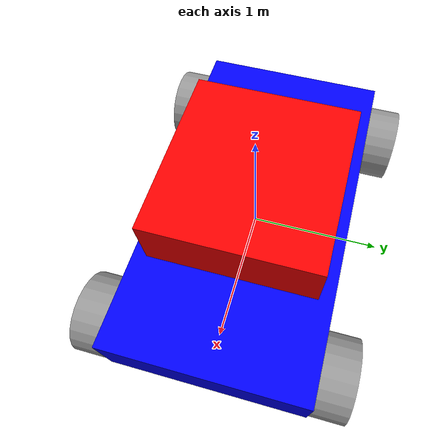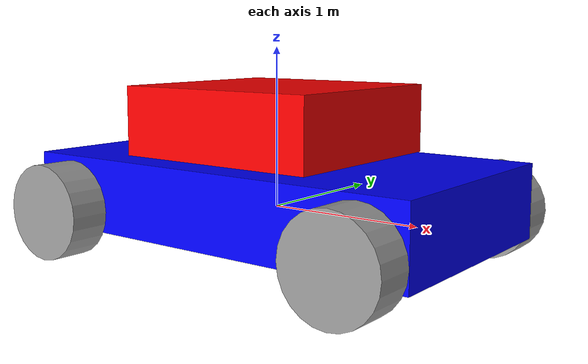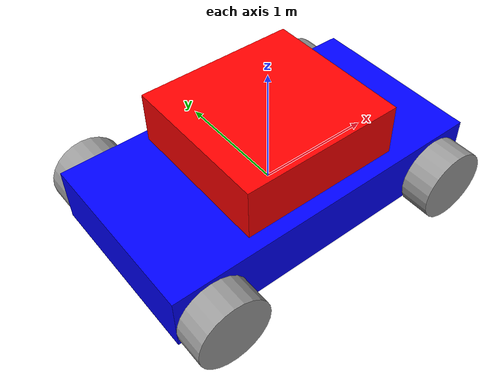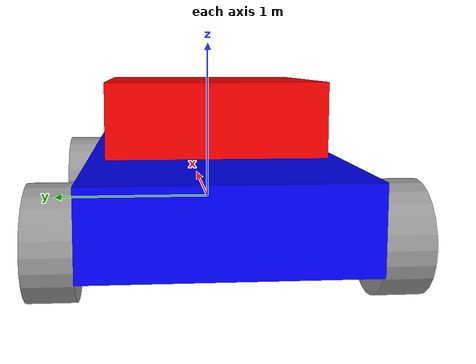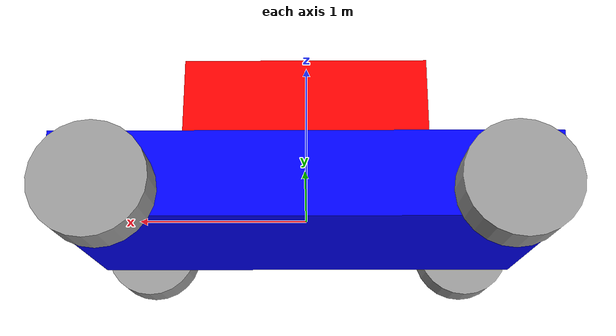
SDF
<?xml version='1.0'?>
<sdf version='1.6'>
  <model name='4_wheelRobot'>
    <link name='link_0'>
      <pose frame=''>-0 0 0.08 0 -0 0</pose>
      <inertial>
        <mass>1.88568</mass>
        <inertia>
          <ixx>0.379444</ixx>
          <ixy>0</ixy>
          <ixz>0</ixz>
          <iyy>1.2096</iyy>
          <iyz>0</iyz>
          <izz>1.5211</izz>
        </inertia>
        <pose frame=''>0 0 0 0 -0 0</pose>
      </inertial>
      <self_collide>0</self_collide>
      <kinematic>0</kinematic>
      <visual name='visual'>
        <pose frame=''>0 0 0 0 -0 0</pose>
        <geometry>
          <box>
            <size>2.73521 1.48274 0.464962</size>
          </box>
        </geometry>
        <material>
          <lighting>1</lighting>
          <script>
            <uri>file://media/materials/scripts/gazebo.material</uri>
            <name>Gazebo/Grey</name>
          </script>
          <ambient>0.3 0.3 0.3 1</ambient>
          <diffuse>0 0 1 1</diffuse>
          <specular>1 0.91 0.3 1</specular>
          <emissive>0 0 0 1</emissive>
          <shader type='vertex'>
            <normal_map>__default__</normal_map>
          </shader>
        </material>
        <cast_shadows>1</cast_shadows>
        <transparency>0</transparency>
      </visual>
      <collision name='collision'>
        <laser_retro>0</laser_retro>
        <max_contacts>10</max_contacts>
        <pose frame=''>0 0 0 0 -0 0</pose>
        <geometry>
          <box>
            <size>2.73521 1.48274 0.464962</size>
          </box>
        </geometry>
        <surface>
          <friction>
            <ode>
              <mu>1</mu>
              <mu2>1</mu2>
              <fdir1>0 0 0</fdir1>
              <slip1>0</slip1>
              <slip2>0</slip2>
            </ode>
            <torsional>
              <coefficient>1</coefficient>
              <patch_radius>0</patch_radius>
              <surface_radius>0</surface_radius>
              <use_patch_radius>1</use_patch_radius>
              <ode>
                <slip>0</slip>
              </ode>
            </torsional>
          </friction>
          <bounce>
            <restitution_coefficient>0</restitution_coefficient>
            <threshold>1e+06</threshold>
          </bounce>
          <contact>
            <collide_without_contact>0</collide_without_contact>
            <collide_without_contact_bitmask>1</collide_without_contact_bitmask>
            <collide_bitmask>1</collide_bitmask>
            <ode>
              <soft_cfm>0</soft_cfm>
              <soft_erp>0.2</soft_erp>
              <kp>1e+13</kp>
              <kd>1</kd>
              <max_vel>0.01</max_vel>
              <min_depth>0</min_depth>
            </ode>
            <bullet>
              <split_impulse>1</split_impulse>
              <split_impulse_penetration_threshold>-0.01</split_impulse_penetration_threshold>
              <soft_cfm>0</soft_cfm>
              <soft_erp>0.2</soft_erp>
              <kp>1e+13</kp>
              <kd>1</kd>
            </bullet>
          </contact>
        </surface>
      </collision>
    </link>
    <link name='link_0_0'>
      <pose frame=''>-0 -0 0.55037 0 -0 2.8e-05</pose>
      <inertial>
        <mass>0.727039</mass>
        <inertia>
          <ixx>0.107272</ixx>
          <ixy>0</ixy>
          <ixz>0</ixz>
          <iyy>0.119979</iyy>
          <iyz>0</iyz>
          <izz>0.204726</izz>
        </inertia>
        <pose frame=''>0 0 0 0 -0 0</pose>
      </inertial>
      <self_collide>0</self_collide>
      <kinematic>0</kinematic>
      <visual name='visual'>
        <pose frame=''>0 0 0 0 -0 0</pose>
        <geometry>
          <box>
            <size>1.33955 1.25883 0.431187</size>
          </box>
        </geometry>
        <material>
          <lighting>1</lighting>
          <script>
            <uri>file://media/materials/scripts/gazebo.material</uri>
            <name>Gazebo/Grey</name>
          </script>
          <ambient>0.3 0.3 0.3 1</ambient>
          <diffuse>1 0 0 1</diffuse>
          <specular>0.01 0.01 0.01 1</specular>
          <emissive>0 0 0 1</emissive>
          <shader type='vertex'>
            <normal_map>__default__</normal_map>
          </shader>
        </material>
        <cast_shadows>1</cast_shadows>
        <transparency>0</transparency>
      </visual>
      <collision name='collision'>
        <laser_retro>0</laser_retro>
        <max_contacts>10</max_contacts>
        <pose frame=''>0 0 0 0 -0 0</pose>
        <geometry>
          <box>
            <size>1.33955 1.25883 0.431187</size>
          </box>
        </geometry>
        <surface>
          <friction>
            <ode>
              <mu>1</mu>
              <mu2>1</mu2>
              <fdir1>0 0 0</fdir1>
              <slip1>0</slip1>
              <slip2>0</slip2>
            </ode>
            <torsional>
              <coefficient>1</coefficient>
              <patch_radius>0</patch_radius>
              <surface_radius>0</surface_radius>
              <use_patch_radius>1</use_patch_radius>
              <ode>
                <slip>0</slip>
              </ode>
            </torsional>
          </friction>
          <bounce>
            <restitution_coefficient>0</restitution_coefficient>
            <threshold>1e+06</threshold>
          </bounce>
          <contact>
            <collide_without_contact>0</collide_without_contact>
            <collide_without_contact_bitmask>1</collide_without_contact_bitmask>
            <collide_bitmask>1</collide_bitmask>
            <ode>
              <soft_cfm>0</soft_cfm>
              <soft_erp>0.2</soft_erp>
              <kp>1e+13</kp>
              <kd>1</kd>
              <max_vel>0.01</max_vel>
              <min_depth>0</min_depth>
            </ode>
            <bullet>
              <split_impulse>1</split_impulse>
              <split_impulse_penetration_threshold>-0.01</split_impulse_penetration_threshold>
              <soft_cfm>0</soft_cfm>
              <soft_erp>0.2</soft_erp>
              <kp>1e+13</kp>
              <kd>1</kd>
            </bullet>
          </contact>
        </surface>
      </collision>
    </link>
    <link name='link_1'>
      <pose frame=''>1.06761 -0.866609 -0.02 1.57 -0 0</pose>
      <inertial>
        <mass>1</mass>
        <inertia>
          <ixx>0.145833</ixx>
          <ixy>0</ixy>
          <ixz>0</ixz>
          <iyy>0.145833</iyy>
          <iyz>0</iyz>
          <izz>0.125</izz>
        </inertia>
        <pose frame=''>0 0 0 0 -0 0</pose>
      </inertial>
      <self_collide>0</self_collide>
      <kinematic>0</kinematic>
      <visual name='visual'>
        <pose frame=''>0 0 0 0 -0 0</pose>
        <geometry>
          <cylinder>
            <radius>0.3</radius>
            <length>0.25</length>
          </cylinder>
        </geometry>
        <material>
          <lighting>1</lighting>
          <script>
            <uri>file://media/materials/scripts/gazebo.material</uri>
            <name>Gazebo/Grey</name>
          </script>
          <ambient>0.3 0.3 0.3 1</ambient>
          <diffuse>0 0 0 1</diffuse>
          <specular>0.01 0.01 0.01 1</specular>
          <emissive>0 0 0 1</emissive>
          <shader type='vertex'>
            <normal_map>__default__</normal_map>
          </shader>
        </material>
        <cast_shadows>1</cast_shadows>
        <transparency>0</transparency>
      </visual>
      <collision name='collision'>
        <laser_retro>0</laser_retro>
        <max_contacts>10</max_contacts>
        <pose frame=''>0 0 0 0 -0 0</pose>
        <geometry>
          <cylinder>
            <radius>0.3</radius>
            <length>0.25</length>
          </cylinder>
        </geometry>
        <surface>
          <friction>
            <ode>
              <mu>1</mu>
              <mu2>1</mu2>
              <fdir1>0 0 0</fdir1>
              <slip1>0</slip1>
              <slip2>0</slip2>
            </ode>
            <torsional>
              <coefficient>1</coefficient>
              <patch_radius>0</patch_radius>
              <surface_radius>0</surface_radius>
              <use_patch_radius>1</use_patch_radius>
              <ode>
                <slip>0</slip>
              </ode>
            </torsional>
          </friction>
          <bounce>
            <restitution_coefficient>0</restitution_coefficient>
            <threshold>1e+06</threshold>
          </bounce>
          <contact>
            <collide_without_contact>0</collide_without_contact>
            <collide_without_contact_bitmask>1</collide_without_contact_bitmask>
            <collide_bitmask>1</collide_bitmask>
            <ode>
              <soft_cfm>0</soft_cfm>
              <soft_erp>0.2</soft_erp>
              <kp>1e+13</kp>
              <kd>1</kd>
              <max_vel>0.01</max_vel>
              <min_depth>0</min_depth>
            </ode>
            <bullet>
              <split_impulse>1</split_impulse>
              <split_impulse_penetration_threshold>-0.01</split_impulse_penetration_threshold>
              <soft_cfm>0</soft_cfm>
              <soft_erp>0.2</soft_erp>
              <kp>1e+13</kp>
              <kd>1</kd>
            </bullet>
          </contact>
        </surface>
      </collision>
    </link>
    <link name='link_1_clone'>
      <pose frame=''>1.06761 0.866609 -0.02 1.57 -0 0</pose>
      <inertial>
        <mass>1</mass>
        <inertia>
          <ixx>0.145833</ixx>
          <ixy>0</ixy>
          <ixz>0</ixz>
          <iyy>0.145833</iyy>
          <iyz>0</iyz>
          <izz>0.125</izz>
        </inertia>
        <pose frame=''>0 0 0 0 -0 0</pose>
      </inertial>
      <self_collide>0</self_collide>
      <kinematic>0</kinematic>
      <visual name='visual'>
        <pose frame=''>0 0 0 0 -0 0</pose>
        <geometry>
          <cylinder>
            <radius>0.3</radius>
            <length>0.25</length>
          </cylinder>
        </geometry>
        <material>
          <lighting>1</lighting>
          <script>
            <uri>file://media/materials/scripts/gazebo.material</uri>
            <name>Gazebo/Grey</name>
          </script>
          <ambient>0.3 0.3 0.3 1</ambient>
          <diffuse>0 0 0 1</diffuse>
          <specular>0.01 0.01 0.01 1</specular>
          <emissive>0 0 0 1</emissive>
          <shader type='vertex'>
            <normal_map>__default__</normal_map>
          </shader>
        </material>
        <cast_shadows>1</cast_shadows>
        <transparency>0</transparency>
      </visual>
      <collision name='collision'>
        <laser_retro>0</laser_retro>
        <max_contacts>10</max_contacts>
        <pose frame=''>0 0 0 0 -0 0</pose>
        <geometry>
          <cylinder>
            <radius>0.3</radius>
            <length>0.25</length>
          </cylinder>
        </geometry>
        <surface>
          <friction>
            <ode>
              <mu>1</mu>
              <mu2>1</mu2>
              <fdir1>0 0 0</fdir1>
              <slip1>0</slip1>
              <slip2>0</slip2>
            </ode>
            <torsional>
              <coefficient>1</coefficient>
              <patch_radius>0</patch_radius>
              <surface_radius>0</surface_radius>
              <use_patch_radius>1</use_patch_radius>
              <ode>
                <slip>0</slip>
              </ode>
            </torsional>
          </friction>
          <bounce>
            <restitution_coefficient>0</restitution_coefficient>
            <threshold>1e+06</threshold>
          </bounce>
          <contact>
            <collide_without_contact>0</collide_without_contact>
            <collide_without_contact_bitmask>1</collide_without_contact_bitmask>
            <collide_bitmask>1</collide_bitmask>
            <ode>
              <soft_cfm>0</soft_cfm>
              <soft_erp>0.2</soft_erp>
              <kp>1e+13</kp>
              <kd>1</kd>
              <max_vel>0.01</max_vel>
              <min_depth>0</min_depth>
            </ode>
            <bullet>
              <split_impulse>1</split_impulse>
              <split_impulse_penetration_threshold>-0.01</split_impulse_penetration_threshold>
              <soft_cfm>0</soft_cfm>
              <soft_erp>0.2</soft_erp>
              <kp>1e+13</kp>
              <kd>1</kd>
            </bullet>
          </contact>
        </surface>
      </collision>
    </link>
    <link name='link_1_clone_0'>
      <pose frame=''>-1.06761 -0.866609 -0.02 1.57 -0 0</pose>
      <inertial>
        <mass>1</mass>
        <inertia>
          <ixx>0.145833</ixx>
          <ixy>0</ixy>
          <ixz>0</ixz>
          <iyy>0.145833</iyy>
          <iyz>0</iyz>
          <izz>0.125</izz>
        </inertia>
        <pose frame=''>0 0 0 0 -0 0</pose>
      </inertial>
      <self_collide>0</self_collide>
      <kinematic>0</kinematic>
      <visual name='visual'>
        <pose frame=''>0 0 0 0 -0 0</pose>
        <geometry>
          <cylinder>
            <radius>0.3</radius>
            <length>0.25</length>
          </cylinder>
        </geometry>
        <material>
          <lighting>1</lighting>
          <script>
            <uri>file://media/materials/scripts/gazebo.material</uri>
            <name>Gazebo/Grey</name>
          </script>
          <ambient>0.3 0.3 0.3 1</ambient>
          <diffuse>0 0 0 1</diffuse>
          <specular>0.01 0.01 0.01 1</specular>
          <emissive>0 0 0 1</emissive>
          <shader type='vertex'>
            <normal_map>__default__</normal_map>
          </shader>
        </material>
        <cast_shadows>1</cast_shadows>
        <transparency>0</transparency>
      </visual>
      <collision name='collision'>
        <laser_retro>0</laser_retro>
        <max_contacts>10</max_contacts>
        <pose frame=''>0 0 0 0 -0 0</pose>
        <geometry>
          <cylinder>
            <radius>0.3</radius>
            <length>0.25</length>
          </cylinder>
        </geometry>
        <surface>
          <friction>
            <ode>
              <mu>1</mu>
              <mu2>1</mu2>
              <fdir1>0 0 0</fdir1>
              <slip1>0</slip1>
              <slip2>0</slip2>
            </ode>
            <torsional>
              <coefficient>1</coefficient>
              <patch_radius>0</patch_radius>
              <surface_radius>0</surface_radius>
              <use_patch_radius>1</use_patch_radius>
              <ode>
                <slip>0</slip>
              </ode>
            </torsional>
          </friction>
          <bounce>
            <restitution_coefficient>0</restitution_coefficient>
            <threshold>1e+06</threshold>
          </bounce>
          <contact>
            <collide_without_contact>0</collide_without_contact>
            <collide_without_contact_bitmask>1</collide_without_contact_bitmask>
            <collide_bitmask>1</collide_bitmask>
            <ode>
              <soft_cfm>0</soft_cfm>
              <soft_erp>0.2</soft_erp>
              <kp>1e+13</kp>
              <kd>1</kd>
              <max_vel>0.01</max_vel>
              <min_depth>0</min_depth>
            </ode>
            <bullet>
              <split_impulse>1</split_impulse>
              <split_impulse_penetration_threshold>-0.01</split_impulse_penetration_threshold>
              <soft_cfm>0</soft_cfm>
              <soft_erp>0.2</soft_erp>
              <kp>1e+13</kp>
              <kd>1</kd>
            </bullet>
          </contact>
        </surface>
      </collision>
    </link>
    <link name='link_1_clone_1'>
      <pose frame=''>-1.06761 0.866609 -0.02 1.57 -0 0</pose>
      <inertial>
        <mass>1</mass>
        <inertia>
          <ixx>0.145833</ixx>
          <ixy>0</ixy>
          <ixz>0</ixz>
          <iyy>0.145833</iyy>
          <iyz>0</iyz>
          <izz>0.125</izz>
        </inertia>
        <pose frame=''>0 0 0 0 -0 0</pose>
      </inertial>
      <self_collide>0</self_collide>
      <kinematic>0</kinematic>
      <visual name='visual'>
        <pose frame=''>0 0 0 0 -0 0</pose>
        <geometry>
          <cylinder>
            <radius>0.3</radius>
            <length>0.25</length>
          </cylinder>
        </geometry>
        <material>
          <lighting>1</lighting>
          <script>
            <uri>file://media/materials/scripts/gazebo.material</uri>
            <name>Gazebo/Grey</name>
          </script>
          <ambient>0.3 0.3 0.3 1</ambient>
          <diffuse>0 0 0 1</diffuse>
          <specular>0.01 0.01 0.01 1</specular>
          <emissive>0 0 0 1</emissive>
          <shader type='vertex'>
            <normal_map>__default__</normal_map>
          </shader>
        </material>
        <cast_shadows>1</cast_shadows>
        <transparency>0</transparency>
      </visual>
      <collision name='collision'>
        <laser_retro>0</laser_retro>
        <max_contacts>10</max_contacts>
        <pose frame=''>0 0 0 0 -0 0</pose>
        <geometry>
          <cylinder>
            <radius>0.3</radius>
            <length>0.25</length>
          </cylinder>
        </geometry>
        <surface>
          <friction>
            <ode>
              <mu>1</mu>
              <mu2>1</mu2>
              <fdir1>0 0 0</fdir1>
              <slip1>0</slip1>
              <slip2>0</slip2>
            </ode>
            <torsional>
              <coefficient>1</coefficient>
              <patch_radius>0</patch_radius>
              <surface_radius>0</surface_radius>
              <use_patch_radius>1</use_patch_radius>
              <ode>
                <slip>0</slip>
              </ode>
            </torsional>
          </friction>
          <bounce>
            <restitution_coefficient>0</restitution_coefficient>
            <threshold>1e+06</threshold>
          </bounce>
          <contact>
            <collide_without_contact>0</collide_without_contact>
            <collide_without_contact_bitmask>1</collide_without_contact_bitmask>
            <collide_bitmask>1</collide_bitmask>
            <ode>
              <soft_cfm>0</soft_cfm>
              <soft_erp>0.2</soft_erp>
              <kp>1e+13</kp>
              <kd>1</kd>
              <max_vel>0.01</max_vel>
              <min_depth>0</min_depth>
            </ode>
            <bullet>
              <split_impulse>1</split_impulse>
              <split_impulse_penetration_threshold>-0.01</split_impulse_penetration_threshold>
              <soft_cfm>0</soft_cfm>
              <soft_erp>0.2</soft_erp>
              <kp>1e+13</kp>
              <kd>1</kd>
            </bullet>
          </contact>
        </surface>
      </collision>
    </link>
    <joint name='link_0_JOINT_0_0' type='revolute'>
      <parent>link_0</parent>
      <child>link_0_0</child>
      <pose frame=''>0 0 0 0 -0 0</pose>
      <axis>
        <xyz>1 0 0</xyz>
        <use_parent_model_frame>0</use_parent_model_frame>
        <limit>
          <lower>-1.79769e+308</lower>
          <upper>1.79769e+308</upper>
          <effort>-1</effort>
          <velocity>-1</velocity>
        </limit>
        <dynamics>
          <spring_reference>0</spring_reference>
          <spring_stiffness>0</spring_stiffness>
          <damping>0</damping>
          <friction>0</friction>
        </dynamics>
      </axis>
      <physics>
        <ode>
          <limit>
            <cfm>0</cfm>
            <erp>0.2</erp>
          </limit>
          <suspension>
            <cfm>0</cfm>
            <erp>0.2</erp>
          </suspension>
        </ode>
      </physics>
    </joint>
    <joint name='link_0_JOINT_0' type='revolute'>
      <parent>link_0</parent>
      <child>link_1</child>
      <pose frame=''>0 0 0 0 -0 0</pose>
      <axis>
        <xyz>0 0 1</xyz>
        <use_parent_model_frame>0</use_parent_model_frame>
        <limit>
          <lower>-1.79769e+308</lower>
          <upper>1.79769e+308</upper>
          <effort>-1</effort>
          <velocity>-1</velocity>
        </limit>
        <dynamics>
          <spring_reference>0</spring_reference>
          <spring_stiffness>0</spring_stiffness>
          <damping>0</damping>
          <friction>0</friction>
        </dynamics>
      </axis>
      <physics>
        <ode>
          <limit>
            <cfm>0</cfm>
            <erp>0.2</erp>
          </limit>
          <suspension>
            <cfm>0</cfm>
            <erp>0.2</erp>
          </suspension>
        </ode>
      </physics>
    </joint>
    <joint name='link_0_JOINT_1' type='revolute'>
      <parent>link_0</parent>
      <child>link_1_clone_0</child>
      <pose frame=''>0 0 0 0 -0 0</pose>
      <axis>
        <xyz>0 0 1</xyz>
        <use_parent_model_frame>0</use_parent_model_frame>
        <limit>
          <lower>-1.79769e+308</lower>
          <upper>1.79769e+308</upper>
          <effort>-1</effort>
          <velocity>-1</velocity>
        </limit>
        <dynamics>
          <spring_reference>0</spring_reference>
          <spring_stiffness>0</spring_stiffness>
          <damping>0</damping>
          <friction>0</friction>
        </dynamics>
      </axis>
      <physics>
        <ode>
          <limit>
            <cfm>0</cfm>
            <erp>0.2</erp>
          </limit>
          <suspension>
            <cfm>0</cfm>
            <erp>0.2</erp>
          </suspension>
        </ode>
      </physics>
    </joint>
    <joint name='link_0_JOINT_2' type='revolute'>
      <parent>link_0</parent>
      <child>link_1_clone</child>
      <pose frame=''>0 0 0 0 -0 0</pose>
      <axis>
        <xyz>0 0 1</xyz>
        <use_parent_model_frame>0</use_parent_model_frame>
        <limit>
          <lower>-1.79769e+308</lower>
          <upper>1.79769e+308</upper>
          <effort>-1</effort>
          <velocity>-1</velocity>
        </limit>
        <dynamics>
          <spring_reference>0</spring_reference>
          <spring_stiffness>0</spring_stiffness>
          <damping>0</damping>
          <friction>0</friction>
        </dynamics>
      </axis>
      <physics>
        <ode>
          <limit>
            <cfm>0</cfm>
            <erp>0.2</erp>
          </limit>
          <suspension>
            <cfm>0</cfm>
            <erp>0.2</erp>
          </suspension>
        </ode>
      </physics>
    </joint>
    <joint name='link_0_JOINT_3' type='revolute'>
      <parent>link_0</parent>
      <child>link_1_clone_1</child>
      <pose frame=''>0 0 0 0 -0 0</pose>
      <axis>
        <xyz>0 0 1</xyz>
        <use_parent_model_frame>0</use_parent_model_frame>
        <limit>
          <lower>-1.79769e+308</lower>
          <upper>1.79769e+308</upper>
          <effort>-1</effort>
          <velocity>-1</velocity>
        </limit>
        <dynamics>
          <spring_reference>0</spring_reference>
          <spring_stiffness>0</spring_stiffness>
          <damping>0</damping>
          <friction>0</friction>
        </dynamics>
      </axis>
      <physics>
        <ode>
          <limit>
            <cfm>0</cfm>
            <erp>0.2</erp>
          </limit>
          <suspension>
            <cfm>0</cfm>
            <erp>0.2</erp>
          </suspension>
        </ode>
      </physics>
    </joint>
    <static>0</static>
    <allow_auto_disable>1</allow_auto_disable>
  </model>
</sdf>
